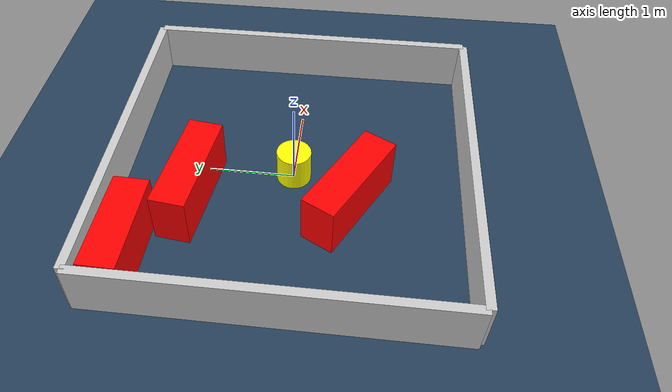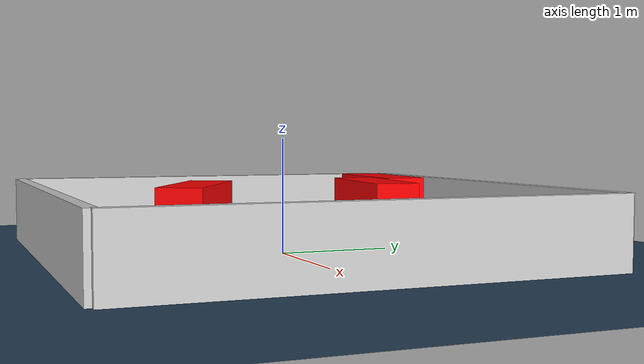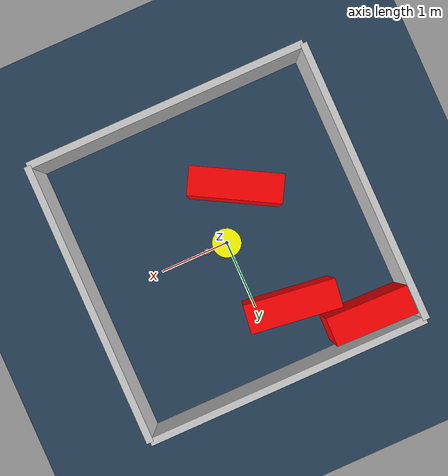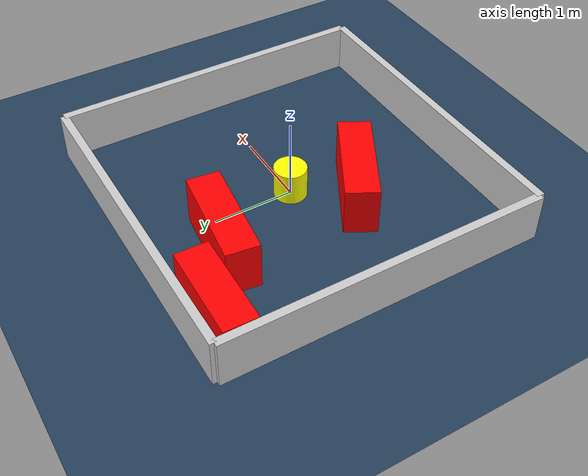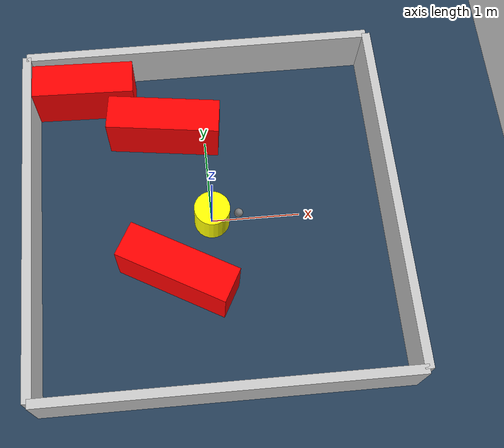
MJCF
<?xml version="1.0" ?>
<mujoco model="generated_environment">
  <option timestep="0.01" integrator="RK4" cone="elliptic"/>
  <default>
    <geom density="1"/>
  </default>
  <asset>
    <texture builtin="gradient" height="3072" rgb1="0.3 0.5 0.7" rgb2="0 0 0" type="skybox" width="512"/>
    <texture builtin="checker" height="300" mark="edge" markrgb="0.8 0.8 0.8" name="groundplane" rgb1="0.2 0.3 0.4" rgb2="0.1 0.2 0.3" type="2d" width="300"/>
    <material name="groundplane" reflectance="0.2" texrepeat="5 5" texture="groundplane" texuniform="true"/>
    <material name="robot" rgba="0.0 1.0 0.0 1"/>
  </asset>
  <worldbody>
    <light dir="0 0 -1" directional="true" pos="0 0 1.5"/>
    <geom condim="4" friction="1.0 0.005 0.001" material="groundplane" name="floor" size="0 0 0.05" type="plane"/>
    <body name="walls">
      <geom name="wall_1" condim="4" pos="-2.0 0.0 0.3" rgba="0.800000011920929 0.800000011920929 0.800000011920929 1.0" size="0.05 2.0 0.3" type="box"/>
      <geom name="wall_2" condim="4" pos="2.0 0.0 0.3" rgba="0.800000011920929 0.800000011920929 0.800000011920929 1.0" size="0.05 2.0 0.3" type="box"/>
      <geom name="wall_3" condim="4" pos="0.0 -2.0 0.3" rgba="0.800000011920929 0.800000011920929 0.800000011920929 1.0" size="2.0 0.05 0.3" type="box"/>
      <geom name="wall_4" condim="4" pos="0.0 2.0 0.3" rgba="0.800000011920929 0.800000011920929 0.800000011920929 1.0" size="2.0 0.05 0.3" type="box"/>
    </body>
    <body name="robot">
      <joint name="joint_x" type="slide" pos="0 0 0" axis="1 0 0"/>
      <joint name="joint_y" type="slide" pos="0 0 0" axis="0 1 0"/>
      <geom name="robot" type="sphere" pos="0.3 0.0 0.2" size="0.05" mass="5." friction="1.0 0.005 0.0001" condim="4" rgba="0.5 0.5 0.5 1.0"/>
      <site name="sensor_ball"/>
    </body>
    <body name="obstacle_movable_1">
      <geom name="obstacle_movable_1" condim="4" pos="0.0 0.0 0.2" euler="0 0 0.0" friction="1.0 0.005 0.001" rgba="1.0 1.0 0.0 1.0" size="0.2 0.2 0.0" type="cylinder" mass="0.1"/>
      <joint type="free"/>
    </body>
    <body name="obstacle_2_static">
      <geom name="obstacle_2_static" condim="4" pos="-0.42351278899094114 -0.656748370411272 0.3" euler="0 0 330.92129666817914" friction="1.0 0.005 0.001" rgba="1 0 0 1" size="0.6398409815543598 0.2 0.3" type="box"/>
    </body>
    <body name="obstacle_3_static">
      <geom name="obstacle_3_static" condim="4" pos="-0.4607068233388759 1.1228263195791952 0.3" euler="0 0 352.5784187809781" friction="1.0 0.005 0.001" rgba="1 0 0 1" size="0.6365014388732408 0.2 0.3" type="box"/>
    </body>
    <body name="obstacle_4_static">
      <geom name="obstacle_4_static" condim="4" pos="-1.361962097162382 1.6630906050996932 0.3" euler="0 0 358.5788039024301" friction="1.0 0.005 0.001" rgba="1 0 0 1" size="0.5791877269796037 0.2 0.3" type="box"/>
    </body>
  </worldbody>
  <actuator>
    <motor name="actuator_x" joint="joint_x" gear="1" ctrlrange="-1 1"/>
    <motor name="actuator_y" joint="joint_y" gear="1" ctrlrange="-1 1"/>
  </actuator>
</mujoco>
